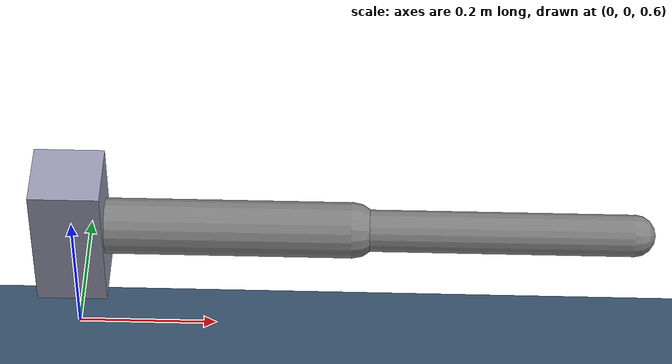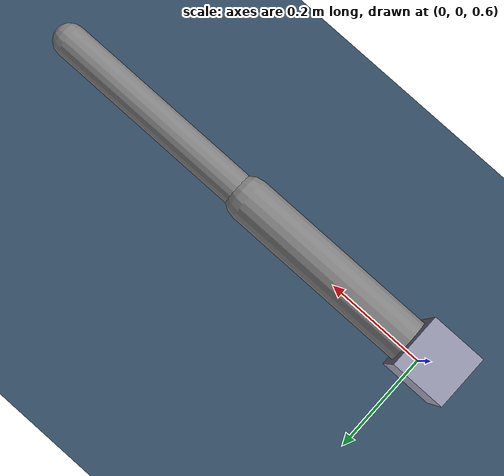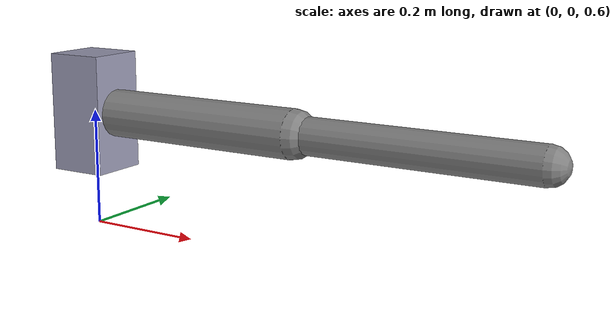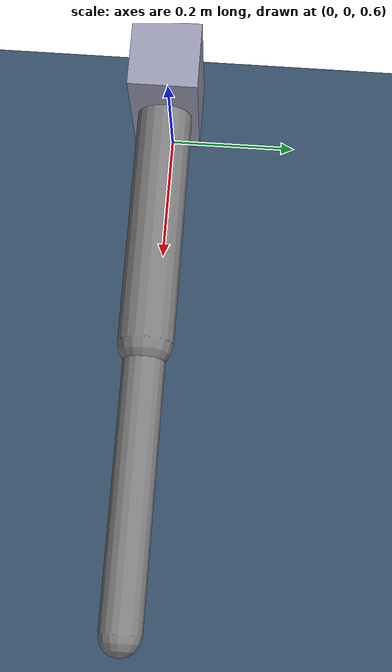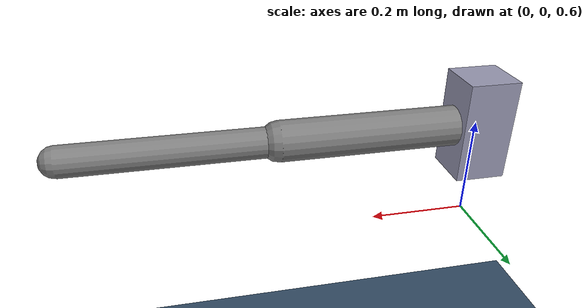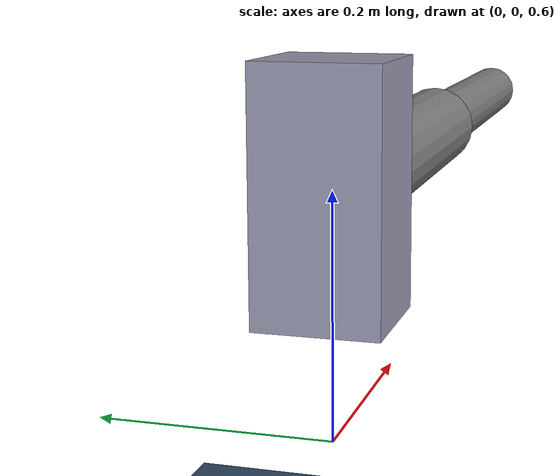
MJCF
<mujoco model="Hopper2D">
    <compiler inertiafromgeom="true" angle="radian"/>
    <option timestep="0.1" integrator="implicit" cone="elliptic"
            solver="Newton" tolerance="1e-10"/>

    <default>
        <geom contype="1" conaffinity="1" condim="3"
              friction="1.0 0.005 0.0001"
              solref="0.005 1"/>
        <joint limited="false" damping="0.05"/>
    </default>

    <asset>
        <material name="ground" rgba="0.2 0.3 0.4 1"/>
        <material name="leg" rgba="0.6 0.6 0.7 1"/>
    </asset>

    <worldbody>
        <!-- Ground -->
        <geom name="floor" type="plane" size="5 5 0.25" material="ground"/>

        <!-- Root floating base -->
        <body name="root" pos="0 0 0.8">
            <joint name="slide_x" type="slide" axis="1 0 0"/>
            <joint name="slide_z" type="slide" axis="0 0 1"/>

            <!-- Torso -->
            <body name="base" pos="0 0 0">
                <geom type="box" size="0.05 0.05 0.1" mass="2.25"
                      material="leg"/>

                <!-- Thigh -->
                <body name="link1" pos="0 0 0">
                    <joint name="hip"
                           type="hinge"
                           axis="0 -1 0"
                           range="-3.14 3.14"/>
                    <geom type="capsule"
                          fromto="0 0 0 0.4 0 0"
                          size="0.04"
                          mass="1.2"/>

                    <!-- Shank -->
                    <body name="link2" pos="0.4 0 0">
                        <joint name="knee"
                               type="hinge"
                               axis="0 -1 0"
                               range="-3.14 3.14"/>
                        <geom type="capsule"
                              fromto="0 0 0 0.4 0 0"
                              size="0.03"
                              mass="0.6"/>

                        <!-- Foot -->
                    </body>
                </body>
            </body>
        </body>
    </worldbody>

    <actuator>
        <motor name="hip_motor" joint="hip"
               ctrlrange="-100 100" ctrllimited="true"/>
        <motor name="knee_motor" joint="knee"
               ctrlrange="-1000 1000" ctrllimited="true"/>
    </actuator>
</mujoco>
